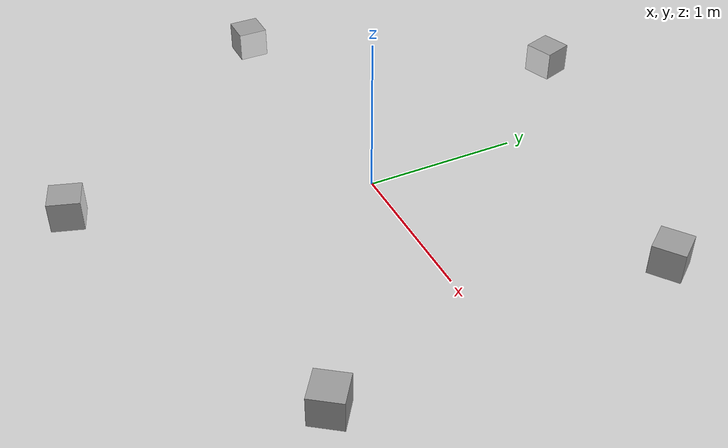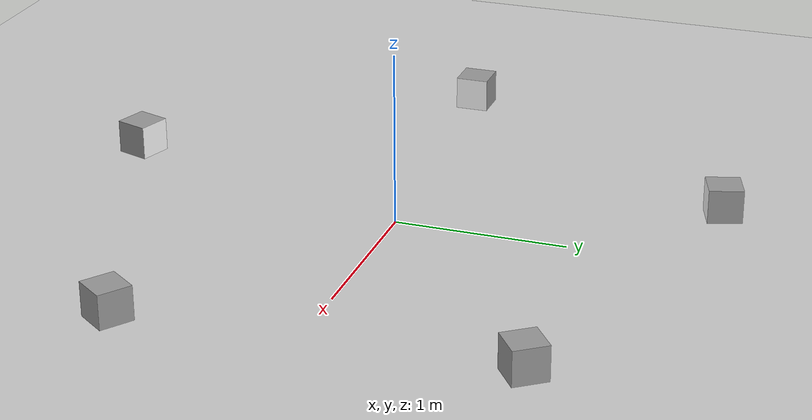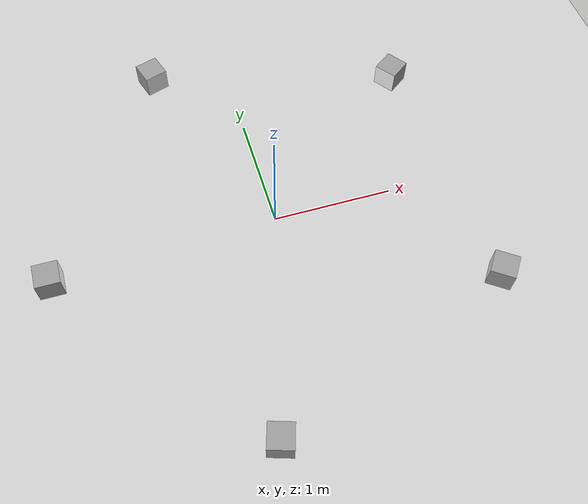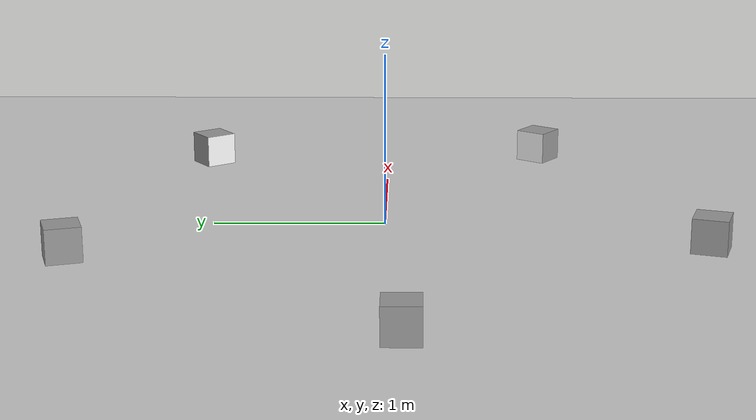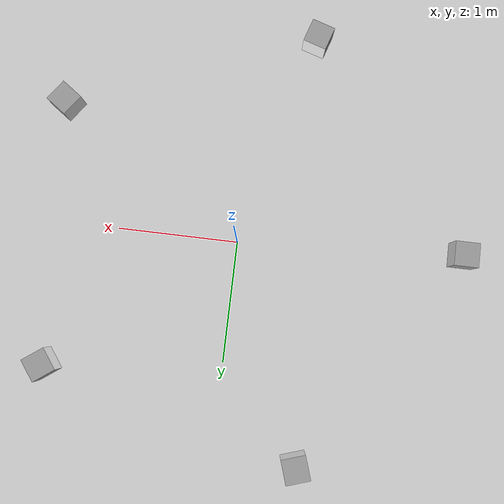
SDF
<sdf version="1.7">
 <world name="default">
  <light name="sun" type="directional">
   <pose>0 0 10 0 -0 0</pose>
   <diffuse>0.8 0.8 0.8 1</diffuse>
   <specular>0.2 0.2 0.2 1</specular>
   <attenuation>
    <range>1000</range>
    <constant>0.9</constant>
    <linear>0.01</linear>
    <quadratic>0.001</quadratic>
   </attenuation>
   <direction>-0.5 0.1 -0.9</direction>
   <spot><inner_angle>0</inner_angle><outer_angle>0</outer_angle><falloff>0</falloff></spot>
  </light>
  <model name="ground_plane">
   <static>1</static>
   <link name="link">
    <collision name="collision">
     <geometry><plane><normal>0 0 1</normal><size>100 100</size></plane></geometry>
     <surface>
      <contact><collide_bitmask>65535</collide_bitmask></contact>
      <friction><ode><mu>100</mu><mu2>50</mu2></ode></friction>
     </surface>
    </collision>
    <visual name="visual">
     <cast_shadows>0</cast_shadows>
     <geometry><plane><normal>0 0 1</normal><size>100 100</size></plane></geometry>
     <material>
      <script><uri>file://media/materials/scripts/gazebo.material</uri><name>Gazebo/Grey</name></script>
     </material>
    </visual>
   </link>
  </model>
  <gravity>0 0 -9.8</gravity>
  <magnetic_field>6e-06 2.3e-05 -4.2e-05</magnetic_field>
  <atmosphere type="adiabatic"/>
  <physics type="ode">
   <max_step_size>0.001</max_step_size>
   <real_time_factor>1</real_time_factor>
   <real_time_update_rate>1000</real_time_update_rate>
  </physics>
  <scene><ambient>0.4 0.4 0.4 1</ambient><background>0.7 0.7 0.7 1</background><shadows>1</shadows></scene>
  <spherical_coordinates>
   <surface_model>EARTH_WGS84</surface_model>
   <latitude_deg>0</latitude_deg>
   <longitude_deg>0</longitude_deg>
   <elevation>0</elevation>
   <heading_deg>0</heading_deg>
  </spherical_coordinates>
  <model name="marker20_box">
   <link name="marker">
    <inertial>
     <mass>0.1</mass>
     <inertia><ixx>0</ixx><ixy>0</ixy><ixz>0</ixz><iyy>0</iyy><iyz>0</iyz><izz>0</izz></inertia>
    </inertial>
    <self_collide>1</self_collide>
    <pose>-0.76428 -0.101106 0.120004 -0.015494 1.56996 -0.015507</pose>
    <visual name="visual">
     <geometry><box><size>0.2 0.2 0.001</size></box></geometry>
     <material>
      <script>
       <uri>model://marker20/material/scripts</uri>
       <uri>model://marker20/material/textures</uri>
       <name>Aruco/marker20</name>
      </script>
      <shader type="pixel"><normal_map>__default__</normal_map></shader>
      <emissive>0 0 0 1</emissive>
      <ambient>1 1 1 1</ambient>
      <diffuse>1 1 1 1</diffuse>
      <specular>0 0 0 1</specular>
     </material>
    </visual>
    <collision name="collision">
     <geometry><box><size>0.2 0.2 0.02</size></box></geometry>
     <surface>
      <friction>
       <ode><mu>1</mu><mu2>1</mu2><fdir1>0 0 0</fdir1><slip1>0</slip1><slip2>0</slip2></ode>
       <torsional>
        <coefficient>1</coefficient>
        <patch_radius>0</patch_radius>
        <surface_radius>0</surface_radius>
        <use_patch_radius>1</use_patch_radius>
        <ode><slip>0</slip></ode>
       </torsional>
      </friction>
      <bounce><restitution_coefficient>0</restitution_coefficient><threshold>1e+06</threshold></bounce>
      <contact>
       <collide_without_contact>0</collide_without_contact>
       <collide_without_contact_bitmask>1</collide_without_contact_bitmask>
       <collide_bitmask>1</collide_bitmask>
       <ode>
        <soft_cfm>0</soft_cfm>
        <soft_erp>0.2</soft_erp>
        <kp>1e+13</kp>
        <kd>1</kd>
        <max_vel>0.01</max_vel>
        <min_depth>0</min_depth>
       </ode>
       <bullet>
        <split_impulse>1</split_impulse>
        <split_impulse_penetration_threshold>-0.01</split_impulse_penetration_threshold>
        <soft_cfm>0</soft_cfm>
        <soft_erp>0.2</soft_erp>
        <kp>1e+13</kp>
        <kd>1</kd>
       </bullet>
      </contact>
     </surface>
    </collision>
   </link>
   <link name="link_1">
    <inertial>
     <mass>1</mass>
     <inertia>
      <ixx>0.166667</ixx>
      <ixy>0</ixy>
      <ixz>0</ixz>
      <iyy>0.166667</iyy>
      <iyz>0</iyz>
      <izz>0.166667</izz>
     </inertia>
    </inertial>
    <pose>-0.86428 -0.101106 0.12 -1.3e-05 -4.2e-05 0</pose>
    <visual name="visual">
     <geometry><box><size>0.2 0.2 0.2</size></box></geometry>
     <material>
      <lighting>1</lighting>
      <script><uri>file://media/materials/scripts/gazebo.material</uri><name>Gazebo/Grey</name></script>
      <shader type="pixel"><normal_map>__default__</normal_map></shader>
      <emissive>0 0 0 1</emissive>
      <ambient>0.3 0.3 0.3 1</ambient>
      <diffuse>0.7 0.7 0.7 1</diffuse>
      <specular>0.01 0.01 0.01 1</specular>
     </material>
    </visual>
    <collision name="collision">
     <geometry><box><size>0.2 0.2 0.2</size></box></geometry>
     <surface>
      <friction>
       <ode><mu>1</mu><mu2>1</mu2><fdir1>0 0 0</fdir1><slip1>0</slip1><slip2>0</slip2></ode>
       <torsional>
        <coefficient>1</coefficient>
        <patch_radius>0</patch_radius>
        <surface_radius>0</surface_radius>
        <use_patch_radius>1</use_patch_radius>
        <ode><slip>0</slip></ode>
       </torsional>
      </friction>
      <bounce><restitution_coefficient>0</restitution_coefficient><threshold>1e+06</threshold></bounce>
      <contact>
       <collide_without_contact>0</collide_without_contact>
       <collide_without_contact_bitmask>1</collide_without_contact_bitmask>
       <collide_bitmask>1</collide_bitmask>
       <ode>
        <soft_cfm>0</soft_cfm>
        <soft_erp>0.2</soft_erp>
        <kp>1e+13</kp>
        <kd>1</kd>
        <max_vel>0.01</max_vel>
        <min_depth>0</min_depth>
       </ode>
       <bullet>
        <split_impulse>1</split_impulse>
        <split_impulse_penetration_threshold>-0.01</split_impulse_penetration_threshold>
        <soft_cfm>0</soft_cfm>
        <soft_erp>0.2</soft_erp>
        <kp>1e+13</kp>
        <kd>1</kd>
       </bullet>
      </contact>
     </surface>
    </collision>
   </link>
   <joint name="link_1_JOINT_3" type="fixed">
    <parent>link_1</parent>
    <child>marker</child>
    <physics>
     <ode><limit><cfm>0</cfm><erp>0.2</erp></limit><suspension><cfm>0</cfm><erp>0.2</erp></suspension></ode>
    </physics>
   </joint>
   <static>0</static>
   <pose>-0.996359 0.000112 -0.020008 1.4e-05 1.8e-05 0.000125</pose>
  </model>
  <model name="marker21_box">
   <link name="marker">
    <inertial>
     <mass>0.1</mass>
     <inertia><ixx>0</ixx><ixy>0</ixy><ixz>0</ixz><iyy>0</iyy><iyz>0</iyz><izz>0</izz></inertia>
    </inertial>
    <self_collide>1</self_collide>
    <pose>-0.76428 -0.101106 0.120004 -0.015494 1.56996 -0.015507</pose>
    <visual name="visual">
     <geometry><box><size>0.2 0.2 0.001</size></box></geometry>
     <material>
      <script>
       <uri>model://marker21/material/scripts</uri>
       <uri>model://marker21/material/textures</uri>
       <name>Aruco/marker21</name>
      </script>
      <shader type="pixel"><normal_map>__default__</normal_map></shader>
      <emissive>0 0 0 1</emissive>
      <ambient>1 1 1 1</ambient>
      <diffuse>1 1 1 1</diffuse>
      <specular>0 0 0 1</specular>
     </material>
    </visual>
    <collision name="collision">
     <geometry><box><size>0.2 0.2 0.02</size></box></geometry>
     <surface>
      <friction>
       <ode><mu>1</mu><mu2>1</mu2><fdir1>0 0 0</fdir1><slip1>0</slip1><slip2>0</slip2></ode>
       <torsional>
        <coefficient>1</coefficient>
        <patch_radius>0</patch_radius>
        <surface_radius>0</surface_radius>
        <use_patch_radius>1</use_patch_radius>
        <ode><slip>0</slip></ode>
       </torsional>
      </friction>
      <bounce><restitution_coefficient>0</restitution_coefficient><threshold>1e+06</threshold></bounce>
      <contact>
       <collide_without_contact>0</collide_without_contact>
       <collide_without_contact_bitmask>1</collide_without_contact_bitmask>
       <collide_bitmask>1</collide_bitmask>
       <ode>
        <soft_cfm>0</soft_cfm>
        <soft_erp>0.2</soft_erp>
        <kp>1e+13</kp>
        <kd>1</kd>
        <max_vel>0.01</max_vel>
        <min_depth>0</min_depth>
       </ode>
       <bullet>
        <split_impulse>1</split_impulse>
        <split_impulse_penetration_threshold>-0.01</split_impulse_penetration_threshold>
        <soft_cfm>0</soft_cfm>
        <soft_erp>0.2</soft_erp>
        <kp>1e+13</kp>
        <kd>1</kd>
       </bullet>
      </contact>
     </surface>
    </collision>
   </link>
   <link name="link_1">
    <inertial>
     <mass>1</mass>
     <inertia>
      <ixx>0.166667</ixx>
      <ixy>0</ixy>
      <ixz>0</ixz>
      <iyy>0.166667</iyy>
      <iyz>0</iyz>
      <izz>0.166667</izz>
     </inertia>
    </inertial>
    <pose>-0.86428 -0.101106 0.12 -1.3e-05 -4.2e-05 0</pose>
    <visual name="visual">
     <geometry><box><size>0.2 0.2 0.2</size></box></geometry>
     <material>
      <lighting>1</lighting>
      <script><uri>file://media/materials/scripts/gazebo.material</uri><name>Gazebo/Grey</name></script>
      <shader type="pixel"><normal_map>__default__</normal_map></shader>
      <emissive>0 0 0 1</emissive>
      <ambient>0.3 0.3 0.3 1</ambient>
      <diffuse>0.7 0.7 0.7 1</diffuse>
      <specular>0.01 0.01 0.01 1</specular>
     </material>
    </visual>
    <collision name="collision">
     <geometry><box><size>0.2 0.2 0.2</size></box></geometry>
     <surface>
      <friction>
       <ode><mu>1</mu><mu2>1</mu2><fdir1>0 0 0</fdir1><slip1>0</slip1><slip2>0</slip2></ode>
       <torsional>
        <coefficient>1</coefficient>
        <patch_radius>0</patch_radius>
        <surface_radius>0</surface_radius>
        <use_patch_radius>1</use_patch_radius>
        <ode><slip>0</slip></ode>
       </torsional>
      </friction>
      <bounce><restitution_coefficient>0</restitution_coefficient><threshold>1e+06</threshold></bounce>
      <contact>
       <collide_without_contact>0</collide_without_contact>
       <collide_without_contact_bitmask>1</collide_without_contact_bitmask>
       <collide_bitmask>1</collide_bitmask>
       <ode>
        <soft_cfm>0</soft_cfm>
        <soft_erp>0.2</soft_erp>
        <kp>1e+13</kp>
        <kd>1</kd>
        <max_vel>0.01</max_vel>
        <min_depth>0</min_depth>
       </ode>
       <bullet>
        <split_impulse>1</split_impulse>
        <split_impulse_penetration_threshold>-0.01</split_impulse_penetration_threshold>
        <soft_cfm>0</soft_cfm>
        <soft_erp>0.2</soft_erp>
        <kp>1e+13</kp>
        <kd>1</kd>
       </bullet>
      </contact>
     </surface>
    </collision>
   </link>
   <joint name="link_1_JOINT_3" type="fixed">
    <parent>link_1</parent>
    <child>marker</child>
    <physics>
     <ode><limit><cfm>0</cfm><erp>0.2</erp></limit><suspension><cfm>0</cfm><erp>0.2</erp></suspension></ode>
    </physics>
   </joint>
   <static>0</static>
   <pose>0.803839 -0.589223 -0.020008 1.5e-05 1.8e-05 2.51876</pose>
  </model>
  <model name="marker22_box">
   <link name="marker">
    <inertial>
     <mass>0.1</mass>
     <inertia><ixx>0</ixx><ixy>0</ixy><ixz>0</ixz><iyy>0</iyy><iyz>0</iyz><izz>0</izz></inertia>
    </inertial>
    <self_collide>1</self_collide>
    <pose>-0.76428 -0.101106 0.120004 -0.015494 1.56996 -0.015507</pose>
    <visual name="visual">
     <geometry><box><size>0.2 0.2 0.001</size></box></geometry>
     <material>
      <script>
       <uri>model://marker22/material/scripts</uri>
       <uri>model://marker22/material/textures</uri>
       <name>Aruco/marker22</name>
      </script>
      <shader type="pixel"><normal_map>__default__</normal_map></shader>
      <emissive>0 0 0 1</emissive>
      <ambient>1 1 1 1</ambient>
      <diffuse>1 1 1 1</diffuse>
      <specular>0 0 0 1</specular>
     </material>
    </visual>
    <collision name="collision">
     <geometry><box><size>0.2 0.2 0.02</size></box></geometry>
     <surface>
      <friction>
       <ode><mu>1</mu><mu2>1</mu2><fdir1>0 0 0</fdir1><slip1>0</slip1><slip2>0</slip2></ode>
       <torsional>
        <coefficient>1</coefficient>
        <patch_radius>0</patch_radius>
        <surface_radius>0</surface_radius>
        <use_patch_radius>1</use_patch_radius>
        <ode><slip>0</slip></ode>
       </torsional>
      </friction>
      <bounce><restitution_coefficient>0</restitution_coefficient><threshold>1e+06</threshold></bounce>
      <contact>
       <collide_without_contact>0</collide_without_contact>
       <collide_without_contact_bitmask>1</collide_without_contact_bitmask>
       <collide_bitmask>1</collide_bitmask>
       <ode>
        <soft_cfm>0</soft_cfm>
        <soft_erp>0.2</soft_erp>
        <kp>1e+13</kp>
        <kd>1</kd>
        <max_vel>0.01</max_vel>
        <min_depth>0</min_depth>
       </ode>
       <bullet>
        <split_impulse>1</split_impulse>
        <split_impulse_penetration_threshold>-0.01</split_impulse_penetration_threshold>
        <soft_cfm>0</soft_cfm>
        <soft_erp>0.2</soft_erp>
        <kp>1e+13</kp>
        <kd>1</kd>
       </bullet>
      </contact>
     </surface>
    </collision>
   </link>
   <link name="link_1">
    <inertial>
     <mass>1</mass>
     <inertia>
      <ixx>0.166667</ixx>
      <ixy>0</ixy>
      <ixz>0</ixz>
      <iyy>0.166667</iyy>
      <iyz>0</iyz>
      <izz>0.166667</izz>
     </inertia>
    </inertial>
    <pose>-0.86428 -0.101106 0.12 -1.3e-05 -4.2e-05 0</pose>
    <visual name="visual">
     <geometry><box><size>0.2 0.2 0.2</size></box></geometry>
     <material>
      <lighting>1</lighting>
      <script><uri>file://media/materials/scripts/gazebo.material</uri><name>Gazebo/Grey</name></script>
      <shader type="pixel"><normal_map>__default__</normal_map></shader>
      <emissive>0 0 0 1</emissive>
      <ambient>0.3 0.3 0.3 1</ambient>
      <diffuse>0.7 0.7 0.7 1</diffuse>
      <specular>0.01 0.01 0.01 1</specular>
     </material>
    </visual>
    <collision name="collision">
     <geometry><box><size>0.2 0.2 0.2</size></box></geometry>
     <surface>
      <friction>
       <ode><mu>1</mu><mu2>1</mu2><fdir1>0 0 0</fdir1><slip1>0</slip1><slip2>0</slip2></ode>
       <torsional>
        <coefficient>1</coefficient>
        <patch_radius>0</patch_radius>
        <surface_radius>0</surface_radius>
        <use_patch_radius>1</use_patch_radius>
        <ode><slip>0</slip></ode>
       </torsional>
      </friction>
      <bounce><restitution_coefficient>0</restitution_coefficient><threshold>1e+06</threshold></bounce>
      <contact>
       <collide_without_contact>0</collide_without_contact>
       <collide_without_contact_bitmask>1</collide_without_contact_bitmask>
       <collide_bitmask>1</collide_bitmask>
       <ode>
        <soft_cfm>0</soft_cfm>
        <soft_erp>0.2</soft_erp>
        <kp>1e+13</kp>
        <kd>1</kd>
        <max_vel>0.01</max_vel>
        <min_depth>0</min_depth>
       </ode>
       <bullet>
        <split_impulse>1</split_impulse>
        <split_impulse_penetration_threshold>-0.01</split_impulse_penetration_threshold>
        <soft_cfm>0</soft_cfm>
        <soft_erp>0.2</soft_erp>
        <kp>1e+13</kp>
        <kd>1</kd>
       </bullet>
      </contact>
     </surface>
    </collision>
   </link>
   <joint name="link_1_JOINT_3" type="fixed">
    <parent>link_1</parent>
    <child>marker</child>
    <physics>
     <ode><limit><cfm>0</cfm><erp>0.2</erp></limit><suspension><cfm>0</cfm><erp>0.2</erp></suspension></ode>
    </physics>
   </joint>
   <static>0</static>
   <pose>0.8048 0.584808 -0.020008 9e-06 1.8e-05 -2.51327</pose>
  </model>
  <model name="marker23_box">
   <link name="marker">
    <inertial>
     <mass>0.1</mass>
     <inertia><ixx>0</ixx><ixy>0</ixy><ixz>0</ixz><iyy>0</iyy><iyz>0</iyz><izz>0</izz></inertia>
    </inertial>
    <self_collide>1</self_collide>
    <pose>-0.76428 -0.101106 0.120004 -0.015494 1.56996 -0.015507</pose>
    <visual name="visual">
     <geometry><box><size>0.2 0.2 0.001</size></box></geometry>
     <material>
      <script>
       <uri>model://marker23/material/scripts</uri>
       <uri>model://marker23/material/textures</uri>
       <name>Aruco/marker23</name>
      </script>
      <shader type="pixel"><normal_map>__default__</normal_map></shader>
      <emissive>0 0 0 1</emissive>
      <ambient>1 1 1 1</ambient>
      <diffuse>1 1 1 1</diffuse>
      <specular>0 0 0 1</specular>
     </material>
    </visual>
    <collision name="collision">
     <geometry><box><size>0.2 0.2 0.02</size></box></geometry>
     <surface>
      <friction>
       <ode><mu>1</mu><mu2>1</mu2><fdir1>0 0 0</fdir1><slip1>0</slip1><slip2>0</slip2></ode>
       <torsional>
        <coefficient>1</coefficient>
        <patch_radius>0</patch_radius>
        <surface_radius>0</surface_radius>
        <use_patch_radius>1</use_patch_radius>
        <ode><slip>0</slip></ode>
       </torsional>
      </friction>
      <bounce><restitution_coefficient>0</restitution_coefficient><threshold>1e+06</threshold></bounce>
      <contact>
       <collide_without_contact>0</collide_without_contact>
       <collide_without_contact_bitmask>1</collide_without_contact_bitmask>
       <collide_bitmask>1</collide_bitmask>
       <ode>
        <soft_cfm>0</soft_cfm>
        <soft_erp>0.2</soft_erp>
        <kp>1e+13</kp>
        <kd>1</kd>
        <max_vel>0.01</max_vel>
        <min_depth>0</min_depth>
       </ode>
       <bullet>
        <split_impulse>1</split_impulse>
        <split_impulse_penetration_threshold>-0.01</split_impulse_penetration_threshold>
        <soft_cfm>0</soft_cfm>
        <soft_erp>0.2</soft_erp>
        <kp>1e+13</kp>
        <kd>1</kd>
       </bullet>
      </contact>
     </surface>
    </collision>
   </link>
   <link name="link_1">
    <inertial>
     <mass>1</mass>
     <inertia>
      <ixx>0.166667</ixx>
      <ixy>0</ixy>
      <ixz>0</ixz>
      <iyy>0.166667</iyy>
      <iyz>0</iyz>
      <izz>0.166667</izz>
     </inertia>
    </inertial>
    <pose>-0.86428 -0.101106 0.12 -1.3e-05 -4.2e-05 0</pose>
    <visual name="visual">
     <geometry><box><size>0.2 0.2 0.2</size></box></geometry>
     <material>
      <lighting>1</lighting>
      <script><uri>file://media/materials/scripts/gazebo.material</uri><name>Gazebo/Grey</name></script>
      <shader type="pixel"><normal_map>__default__</normal_map></shader>
      <emissive>0 0 0 1</emissive>
      <ambient>0.3 0.3 0.3 1</ambient>
      <diffuse>0.7 0.7 0.7 1</diffuse>
      <specular>0.01 0.01 0.01 1</specular>
     </material>
    </visual>
    <collision name="collision">
     <geometry><box><size>0.2 0.2 0.2</size></box></geometry>
     <surface>
      <friction>
       <ode><mu>1</mu><mu2>1</mu2><fdir1>0 0 0</fdir1><slip1>0</slip1><slip2>0</slip2></ode>
       <torsional>
        <coefficient>1</coefficient>
        <patch_radius>0</patch_radius>
        <surface_radius>0</surface_radius>
        <use_patch_radius>1</use_patch_radius>
        <ode><slip>0</slip></ode>
       </torsional>
      </friction>
      <bounce><restitution_coefficient>0</restitution_coefficient><threshold>1e+06</threshold></bounce>
      <contact>
       <collide_without_contact>0</collide_without_contact>
       <collide_without_contact_bitmask>1</collide_without_contact_bitmask>
       <collide_bitmask>1</collide_bitmask>
       <ode>
        <soft_cfm>0</soft_cfm>
        <soft_erp>0.2</soft_erp>
        <kp>1e+13</kp>
        <kd>1</kd>
        <max_vel>0.01</max_vel>
        <min_depth>0</min_depth>
       </ode>
       <bullet>
        <split_impulse>1</split_impulse>
        <split_impulse_penetration_threshold>-0.01</split_impulse_penetration_threshold>
        <soft_cfm>0</soft_cfm>
        <soft_erp>0.2</soft_erp>
        <kp>1e+13</kp>
        <kd>1</kd>
       </bullet>
      </contact>
     </surface>
    </collision>
   </link>
   <joint name="link_1_JOINT_3" type="fixed">
    <parent>link_1</parent>
    <child>marker</child>
    <physics>
     <ode><limit><cfm>0</cfm><erp>0.2</erp></limit><suspension><cfm>0</cfm><erp>0.2</erp></suspension></ode>
    </physics>
   </joint>
   <static>0</static>
   <pose>-0.309896 -0.948737 -0.020009 3e-06 1.8e-05 1.25869</pose>
  </model>
  <model name="marker24_box">
   <link name="marker">
    <inertial>
     <mass>0.1</mass>
     <inertia><ixx>0</ixx><ixy>0</ixy><ixz>0</ixz><iyy>0</iyy><iyz>0</iyz><izz>0</izz></inertia>
    </inertial>
    <self_collide>1</self_collide>
    <pose>-0.76428 -0.101106 0.120004 -0.015494 1.56996 -0.015507</pose>
    <visual name="visual">
     <geometry><box><size>0.2 0.2 0.001</size></box></geometry>
     <material>
      <script>
       <uri>model://marker24/material/scripts</uri>
       <uri>model://marker24/material/textures</uri>
       <name>Aruco/marker24</name>
      </script>
      <shader type="pixel"><normal_map>__default__</normal_map></shader>
      <emissive>0 0 0 1</emissive>
      <ambient>1 1 1 1</ambient>
      <diffuse>1 1 1 1</diffuse>
      <specular>0 0 0 1</specular>
     </material>
    </visual>
    <collision name="collision">
     <geometry><box><size>0.2 0.2 0.02</size></box></geometry>
     <surface>
      <friction>
       <ode><mu>1</mu><mu2>1</mu2><fdir1>0 0 0</fdir1><slip1>0</slip1><slip2>0</slip2></ode>
       <torsional>
        <coefficient>1</coefficient>
        <patch_radius>0</patch_radius>
        <surface_radius>0</surface_radius>
        <use_patch_radius>1</use_patch_radius>
        <ode><slip>0</slip></ode>
       </torsional>
      </friction>
      <bounce><restitution_coefficient>0</restitution_coefficient><threshold>1e+06</threshold></bounce>
      <contact>
       <collide_without_contact>0</collide_without_contact>
       <collide_without_contact_bitmask>1</collide_without_contact_bitmask>
       <collide_bitmask>1</collide_bitmask>
       <ode>
        <soft_cfm>0</soft_cfm>
        <soft_erp>0.2</soft_erp>
        <kp>1e+13</kp>
        <kd>1</kd>
        <max_vel>0.01</max_vel>
        <min_depth>0</min_depth>
       </ode>
       <bullet>
        <split_impulse>1</split_impulse>
        <split_impulse_penetration_threshold>-0.01</split_impulse_penetration_threshold>
        <soft_cfm>0</soft_cfm>
        <soft_erp>0.2</soft_erp>
        <kp>1e+13</kp>
        <kd>1</kd>
       </bullet>
      </contact>
     </surface>
    </collision>
   </link>
   <link name="link_1">
    <inertial>
     <mass>1</mass>
     <inertia>
      <ixx>0.166667</ixx>
      <ixy>0</ixy>
      <ixz>0</ixz>
      <iyy>0.166667</iyy>
      <iyz>0</iyz>
      <izz>0.166667</izz>
     </inertia>
    </inertial>
    <pose>-0.86428 -0.101106 0.12 -1.3e-05 -4.2e-05 0</pose>
    <visual name="visual">
     <geometry><box><size>0.2 0.2 0.2</size></box></geometry>
     <material>
      <lighting>1</lighting>
      <script><uri>file://media/materials/scripts/gazebo.material</uri><name>Gazebo/Grey</name></script>
      <shader type="pixel"><normal_map>__default__</normal_map></shader>
      <emissive>0 0 0 1</emissive>
      <ambient>0.3 0.3 0.3 1</ambient>
      <diffuse>0.7 0.7 0.7 1</diffuse>
      <specular>0.01 0.01 0.01 1</specular>
     </material>
    </visual>
    <collision name="collision">
     <geometry><box><size>0.2 0.2 0.2</size></box></geometry>
     <surface>
      <friction>
       <ode><mu>1</mu><mu2>1</mu2><fdir1>0 0 0</fdir1><slip1>0</slip1><slip2>0</slip2></ode>
       <torsional>
        <coefficient>1</coefficient>
        <patch_radius>0</patch_radius>
        <surface_radius>0</surface_radius>
        <use_patch_radius>1</use_patch_radius>
        <ode><slip>0</slip></ode>
       </torsional>
      </friction>
      <bounce><restitution_coefficient>0</restitution_coefficient><threshold>1e+06</threshold></bounce>
      <contact>
       <collide_without_contact>0</collide_without_contact>
       <collide_without_contact_bitmask>1</collide_without_contact_bitmask>
       <collide_bitmask>1</collide_bitmask>
       <ode>
        <soft_cfm>0</soft_cfm>
        <soft_erp>0.2</soft_erp>
        <kp>1e+13</kp>
        <kd>1</kd>
        <max_vel>0.01</max_vel>
        <min_depth>0</min_depth>
       </ode>
       <bullet>
        <split_impulse>1</split_impulse>
        <split_impulse_penetration_threshold>-0.01</split_impulse_penetration_threshold>
        <soft_cfm>0</soft_cfm>
        <soft_erp>0.2</soft_erp>
        <kp>1e+13</kp>
        <kd>1</kd>
       </bullet>
      </contact>
     </surface>
    </collision>
   </link>
   <joint name="link_1_JOINT_3" type="fixed">
    <parent>link_1</parent>
    <child>marker</child>
    <physics>
     <ode><limit><cfm>0</cfm><erp>0.2</erp></limit><suspension><cfm>0</cfm><erp>0.2</erp></suspension></ode>
    </physics>
   </joint>
   <static>0</static>
   <pose>-0.30902 0.949387 -0.020009 1.4e-05 1.9e-05 -1.2573</pose>
  </model>
 </world>
</sdf>
